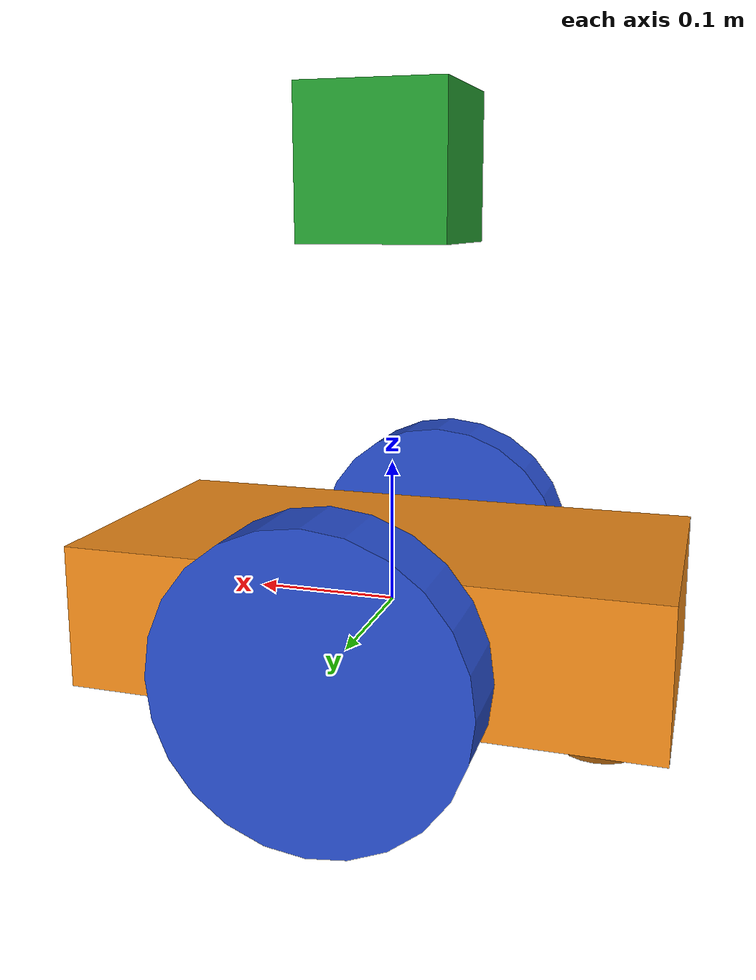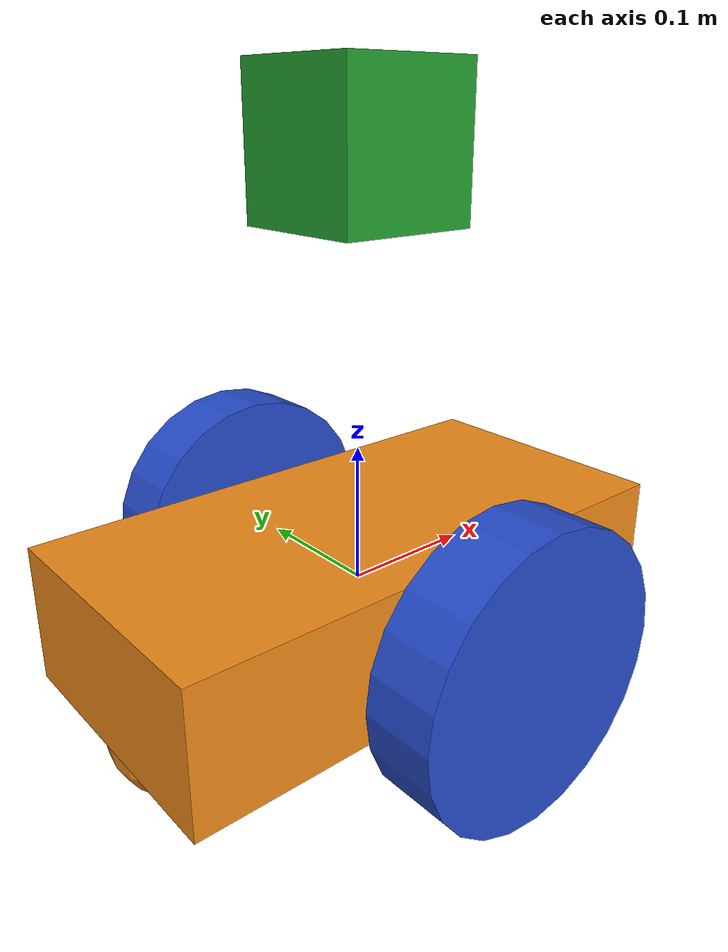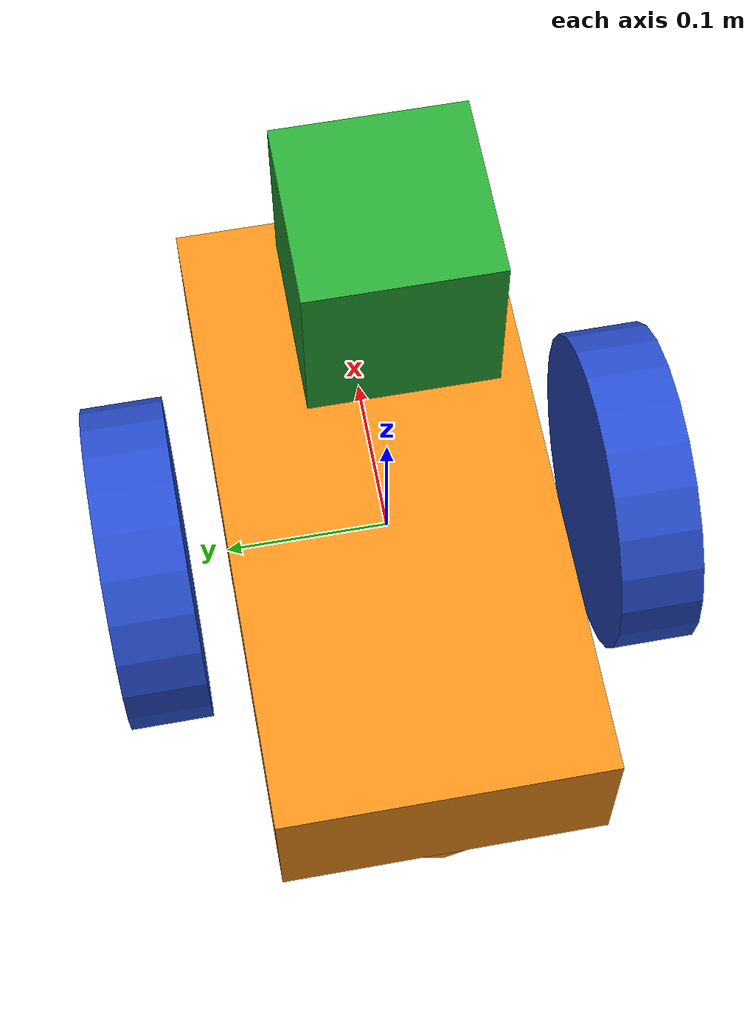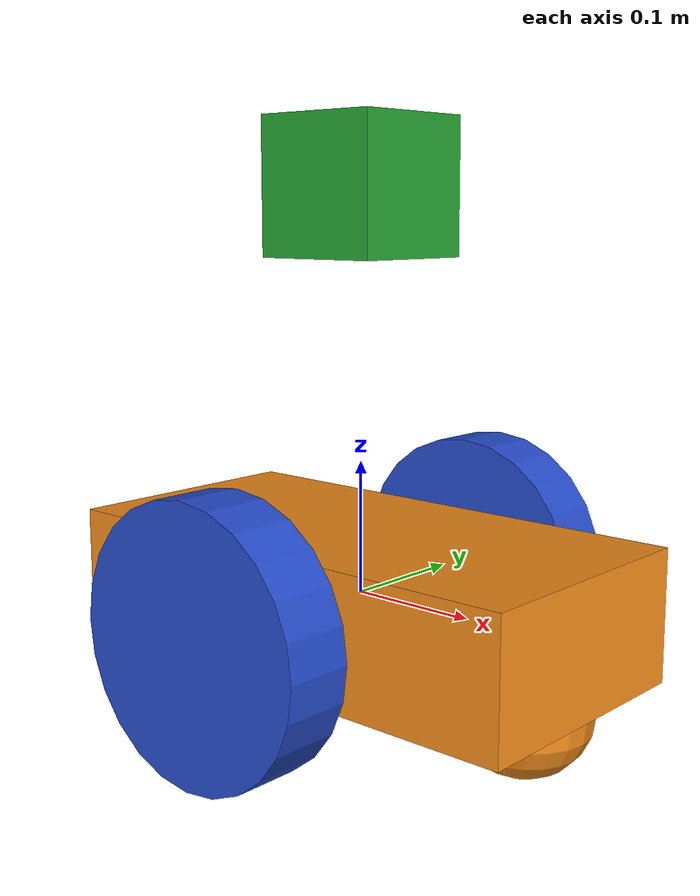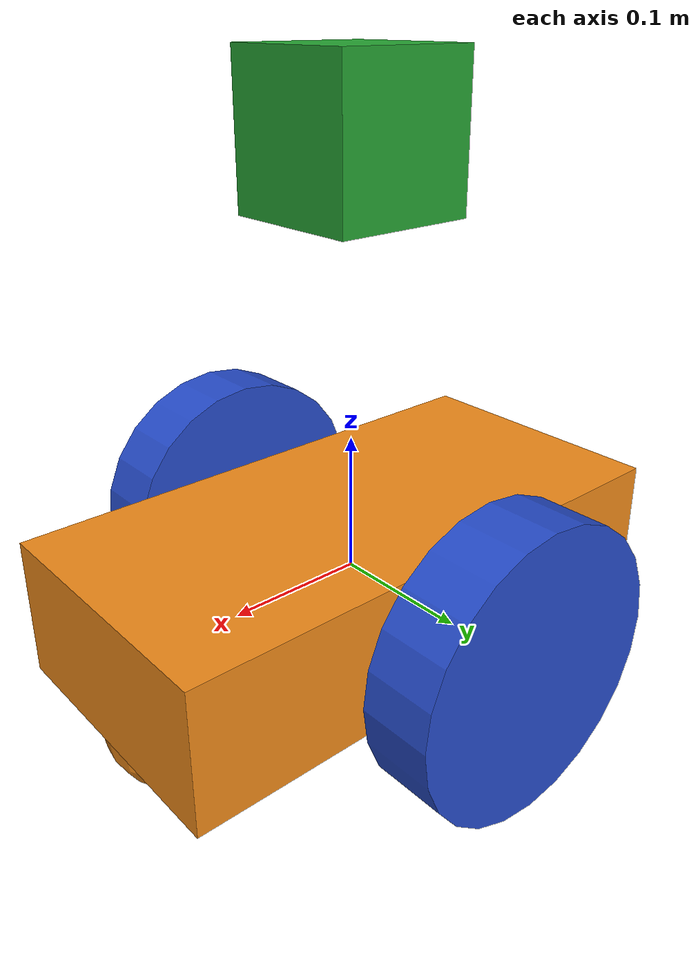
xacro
<?xml version="1.0"?>
<robot name="my_robot"
    xmlns:xacro="http://www.ros.org/wiki/xacro">
    <gazebo reference="base_link">
        <material>Gazebo/Orange</material>
    </gazebo>

    <gazebo reference="left_wheel">
        <material>Gazebo/Blue</material>
    </gazebo>

    <gazebo reference="right_wheel">
        <material>Gazebo/Blue</material>
    </gazebo>sudo
    <gazebo reference="camera_link">
        <material>Gazebo/Green</material>
        <sensor type="camera" name="camera1">
            <update_rate>30.0</update_rate>
            <camera name="head">
                <horizontal_fov>1.3962634</horizontal_fov>
                <image>
                    <width>800</width>
                    <height>800</height>
                    <format>R8G8B8</format>
                </image>
                <clip>
                    <near>0.02</near>
                    <far>300</far>
                </clip>
            </camera>
            <plugin name="camera_controller" filename="libgazebo_ros_camera.so">
                <alwaysOn>true</alwaysOn>
                <updateRate>0.0</updateRate>
                <cameraName>my_robot/camera1</cameraName>
                <imageTopicName>image_raw</imageTopicName>
                <cameraInfoTopicName>camera_info</cameraInfoTopicName>
                <frameName>camera</frameName>
                <hackBaseline>0.07</hackBaseline>
                <distortionK1>0.0</distortionK1>
                <distortionK2>0.0</distortionK2>
                <distortionK3>0.0</distortionK3>
                <distortionT1>0.0</distortionT1>
                <distortionT2>0.0</distortionT2>
            </plugin>
        </sensor>
    </gazebo>

    <link name='base_link'>
        <pose>0 0 0.1 0 0 0</pose>

        <inertial>
            <mass value="15.0"/>
            <origin xyz="0.0 0 0.1" rpy=" 0 0 0"/>
            <inertia ixx="0.1" ixy="0" ixz="0" iyy="0.1" iyz="0" izz="0.1" />
        </inertial>

        <collision name='collision'>
            <geometry>
                <box size=".4 .2 .1"/>
            </geometry>
        </collision>

        <visual name='base_link_visual'>
            <origin xyz="0 0 0" rpy=" 0 0 0"/>
            <geometry>
                <box size=".4 .2 .1"/>
            </geometry>
        </visual>

        <collision name='caster_collision'>
            <origin xyz="-0.15 0 -0.05" rpy=" 0 0 0"/>
            <geometry>
                <sphere radius="0.05"/>
            </geometry>
            <surface>
                <friction>
                    <ode>
                        <mu>0</mu>
                        <mu2>0</mu2>
                        <slip1>1.0</slip1>
                        <slip2>1.0</slip2>
                    </ode>
                </friction>
            </surface>
        </collision>

        <visual name='caster_visual'>
            <origin xyz="-0.15 0 -0.05" rpy=" 0 0 0"/>
            <geometry>
                <sphere radius="0.05"/>
            </geometry>
        </visual>

        <collision name='caster_front_collision'>
            <origin xyz="0.15 0 -0.05" rpy=" 0 0 0"/>
            <geometry>
                <sphere radius="0.05"/>
            </geometry>
            <surface>
                <friction>
                    <ode>
                        <mu>0</mu>
                        <mu2>0</mu2>
                        <slip1>1.0</slip1>
                        <slip2>1.0</slip2>
                    </ode>
                </friction>
            </surface>
        </collision>

        <visual name='caster_front_visual'>
            <origin xyz="0.15 0 -0.05" rpy=" 0 0 0"/>
            <geometry>
                <sphere radius="0.05"/>
            </geometry>
        </visual>

    </link>
    <link name="right_wheel">
        <!--origin xyz="0.1 0.13 0.1" rpy="0 1.5707 1.5707"/-->
        <collision name="collision">
            <origin xyz="0 0 0" rpy="0 1.5707 1.5707"/>
            <geometry>
                <cylinder radius="0.1" length="0.05"/>
            </geometry>
        </collision>
        <visual name="right_wheel_visual">
            <origin xyz="0 0 0" rpy="0 1.5707 1.5707"/>
            <geometry>
                <cylinder radius="0.1" length="0.05"/>
            </geometry>
        </visual>
        <inertial>
            <origin xyz="0 0 0" rpy="0 1.5707 1.5707"/>
            <mass value="5"/>
            <inertia ixx=".1" ixy="0.0" ixz="0.0" iyy=".1" iyz="0.0" izz=".1"/>
        </inertial>
    </link>
    <link name="left_wheel">
        <!--origin xyz="0.1 0.13 0.1" rpy="0 1.5707 1.5707"/-->
        <collision name="collision">
            <origin xyz="0 0 0" rpy="0 1.5707 1.5707"/>
            <geometry>
                <cylinder radius="0.1" length="0.05"/>
            </geometry>
        </collision>
        <visual name="left_wheel_visual">
            <origin xyz="0 0 0" rpy="0 1.5707 1.5707"/>
            <geometry>
                <cylinder radius="0.1" length="0.05"/>
            </geometry>
        </visual>
        <inertial>
            <origin xyz="0 0 0" rpy="0 1.5707 1.5707"/>
            <mass value="5"/>
            <inertia ixx=".1" ixy="0.0" ixz="0.0" iyy=".1" iyz="0.0" izz=".1"/>
        </inertial>
    </link>

    <joint type="continuous" name="left_wheel_hinge">
        <origin xyz="0 0.15 0" rpy="0 0 0"/>
        <!--origin xyz="0.1 0.13 0" rpy="0 1.5707 1.5707"/-->
        <child link="left_wheel"/>
        <parent link="base_link"/>
        <axis xyz="0 1 0" rpy="0 0 0"/>
        <limit effort="10000" velocity="1000"/>
        <joint_properties damping="1.0" friction="1.0"/>
    </joint>

    <joint type="continuous" name="right_wheel_hinge">
        <origin xyz="0 -0.15 0" rpy="0 0 0"/>

        <child link="right_wheel"/>
        <parent link="base_link"/>
        <axis xyz="0 1 0" rpy="0 0 0"/>
        <limit effort="10000" velocity="1000"/>
        <joint_properties damping="1.0" friction="1.0"/>
    </joint>
    <link name="camera_link">
        <collision>
            <origin xyz="0 0 0" rpy="0 0 0"/>
            <geometry>
                <box size="0.1 0.1 0.1"/>
            </geometry>
        </collision>

        <visual>
            <origin xyz="0 0 0" rpy="0 0 0"/>
            <geometry>
                <box size="0.1 0.1 0.1"/>
            </geometry>
            <material name="green"/>
        </visual>

        <inertial>
            <mass value="1.0" />
            <origin xyz="0 0 0" rpy="0 0 0"/>
            <box_inertia m="1.0" x="0.1" y="0.1" z="0.1" />
            <inertia ixx="1e-6" ixy="0" ixz="0" iyy="1e-6" iyz="0" izz="1e-6" />
        </inertial>
    </link>

    <joint name="camera_joint" type="fixed">
        <axis xyz="0 1 0" />
        <origin xyz="0 0 .3" rpy="0 0 0"/>
        <parent link="base_link"/>
        <child link="camera_link"/>
    </joint>

</robot>
